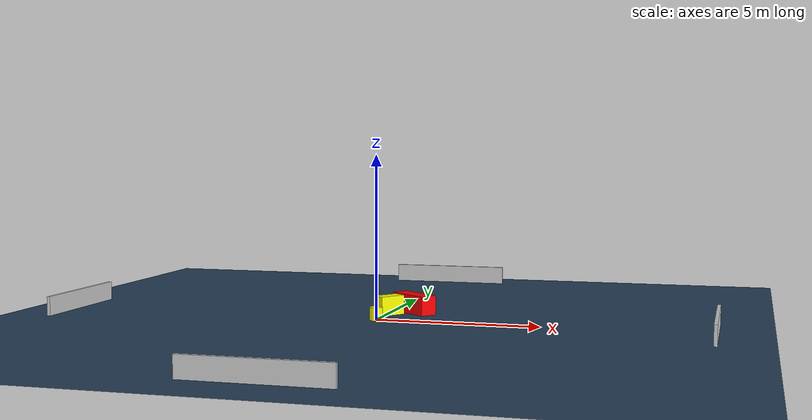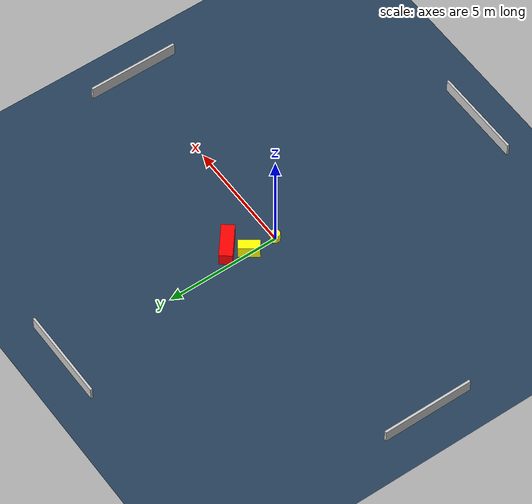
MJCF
<?xml version="1.0" ?>
<mujoco model="generated_environment">
  <option timestep="0.01" integrator="RK4" cone="elliptic"/>
  <default>
    <geom density="1"/>
  </default>
  <asset>
    <texture builtin="gradient" height="3072" name="skybox" rgb1="0.3 0.5 0.7" rgb2="0 0 0" type="skybox" width="512"/>
    <texture builtin="checker" height="300" name="groundplane" rgb1="0.2 0.3 0.4" rgb2="0.1 0.2 0.3" type="2d" width="300"/>
    <material name="groundplane" reflectance="0.2" texrepeat="5 5" texture="groundplane"/>
  </asset>
  <worldbody>
    <light dir="0 0 -1" directional="true" pos="0 0 1.5"/>
    <geom condim="3" friction="0.5 0.005 0.001" material="groundplane" name="floor" pos="0 0 0" size="0 0 0.05" type="plane"/>
    <body name="walls">
      <geom name="wall_1" condim="4" pos="-10.0 0.0 0.3" rgba="0.800000011920929 0.800000011920929 0.800000011920929 1.0" size="0.05 2.0 0.3" type="box"/>
      <geom name="wall_2" condim="4" pos="10.0 0.0 0.3" rgba="0.800000011920929 0.800000011920929 0.800000011920929 1.0" size="0.05 2.0 0.3" type="box"/>
      <geom name="wall_3" condim="4" pos="0.0 -10.0 0.3" rgba="0.800000011920929 0.800000011920929 0.800000011920929 1.0" size="2.0 0.05 0.3" type="box"/>
      <geom name="wall_4" condim="4" pos="0.0 10.0 0.3" rgba="0.800000011920929 0.800000011920929 0.800000011920929 1.0" size="2.0 0.05 0.3" type="box"/>
    </body>
    <body name="robot">
      <joint name="joint_x" type="slide" pos="0 0 0" axis="1 0 0"/>
      <joint name="joint_y" type="slide" pos="0 0 0" axis="0 1 0"/>
      <geom name="robot" type="cylinder" pos="0.0 0.0 0.2" size="0.2 0.2 0.0" mass="5.0" friction="1.0 0.005 0.0001" condim="4" rgba="1.0 1.0 0.0 1.0"/>
    </body>
    <body name="obstacle_1_movable">
      <geom name="obstacle_1_movable" condim="4" pos="0.0564740572959702 1.2240233507315166 0.3" euler="0 0 234.3996092438177" friction="0.0 0.005 0.001" rgba="1.0 1.0 0.0 1.0" size="0.44578979705735433 0.21381021937767158 0.3" type="box" mass="0.1"/>
      <joint type="free"/>
    </body>
    <body name="obstacle_2_static">
      <geom name="obstacle_2_static" condim="4" pos="0.7154987085916483 1.8235241727728835 0.3" euler="0 0 51.36062679834121" friction="0.0 0.005 0.001" rgba="1.0 0.0 0.0 1.0" size="0.28061582252059536 0.7499750017127049 0.3" type="box"/>
    </body>
  </worldbody>
  <actuator>
    <motor name="actuator_x" joint="joint_x" gear="1" ctrlrange="-1 1"/>
    <motor name="actuator_y" joint="joint_y" gear="1" ctrlrange="-1 1"/>
  </actuator>
</mujoco>
